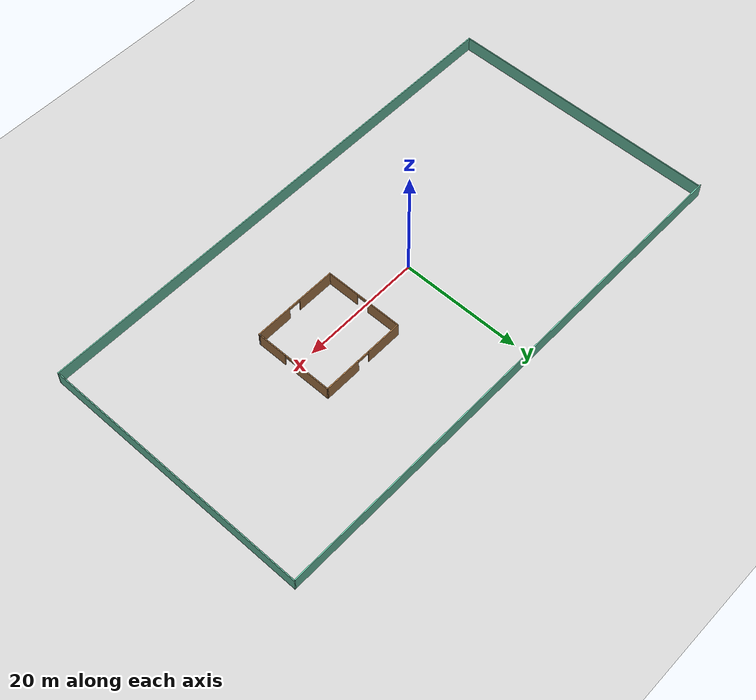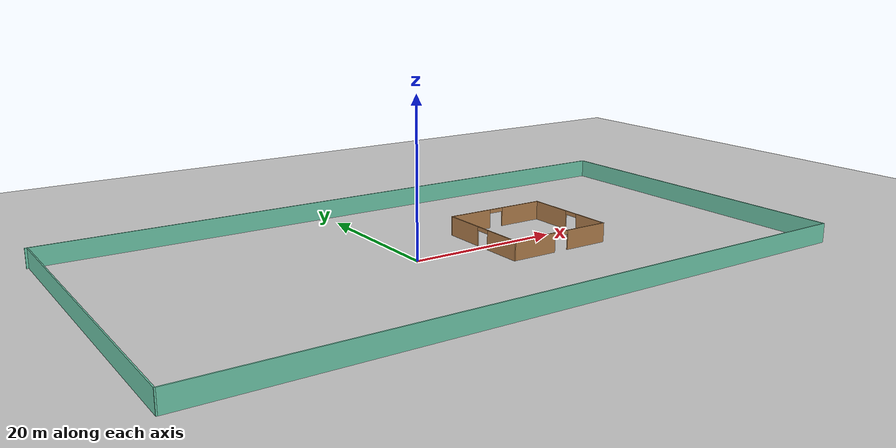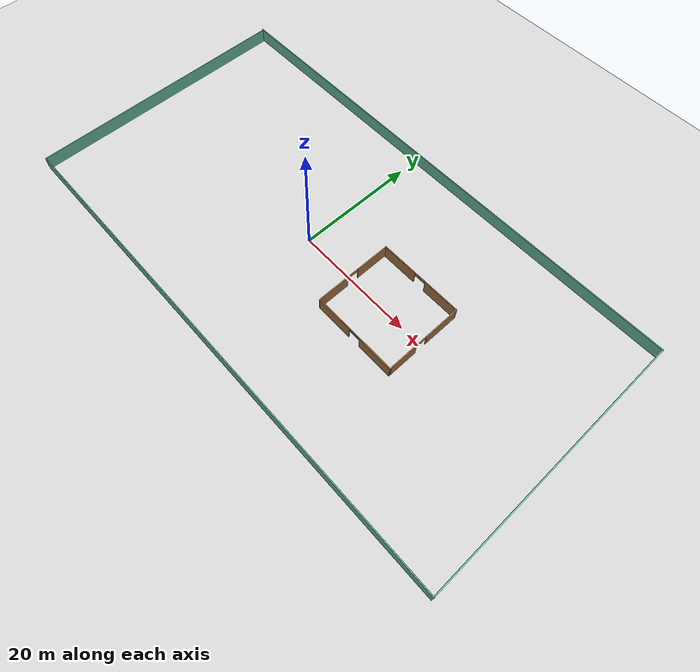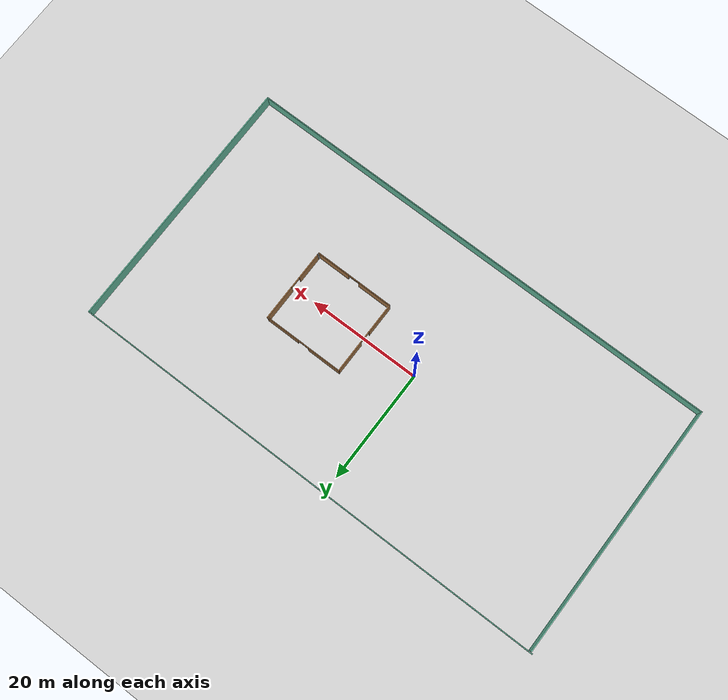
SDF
<sdf version="1.7">
 <world name="default">
  <light name="sun" type="directional">
   <pose>0 0 10 0 -0 0</pose>
   <diffuse>0.8 0.8 0.8 1</diffuse>
   <specular>0.2 0.2 0.2 1</specular>
   <attenuation>
    <range>1000</range>
    <constant>0.9</constant>
    <linear>0.01</linear>
    <quadratic>0.001</quadratic>
   </attenuation>
   <direction>-0.5 0.1 -0.9</direction>
   <spot><inner_angle>0</inner_angle><outer_angle>0</outer_angle><falloff>0</falloff></spot>
  </light>
  <model name="ground_plane">
   <static>1</static>
   <link name="link">
    <collision name="collision">
     <geometry><plane><normal>0 0 1</normal><size>100 100</size></plane></geometry>
     <surface><friction><ode><mu>100</mu><mu2>50</mu2></ode></friction></surface>
    </collision>
    <visual name="visual">
     <cast_shadows>0</cast_shadows>
     <geometry><plane><normal>0 0 1</normal><size>100 100</size></plane></geometry>
     <material>
      <script><uri>file://media/materials/scripts/gazebo.material</uri><name>Gazebo/Grey</name></script>
     </material>
    </visual>
   </link>
  </model>
  <gravity>0 0 -9.8</gravity>
  <magnetic_field>6e-06 2.3e-05 -4.2e-05</magnetic_field>
  <atmosphere type="adiabatic"/>
  <physics type="ode">
   <max_step_size>0.001</max_step_size>
   <real_time_factor>1</real_time_factor>
   <real_time_update_rate>1000</real_time_update_rate>
  </physics>
  <scene><ambient>0.4 0.4 0.4 1</ambient><background>0.7 0.7 0.7 1</background><shadows>1</shadows></scene>
  <spherical_coordinates>
   <surface_model>EARTH_WGS84</surface_model>
   <latitude_deg>0</latitude_deg>
   <longitude_deg>0</longitude_deg>
   <elevation>0</elevation>
   <heading_deg>0</heading_deg>
  </spherical_coordinates>
  <model name="outside_1">
   <pose>3.75861 8.4888 0 0 -0 0</pose>
   <link name="Wall_22">
    <collision name="Wall_22_Collision">
     <geometry><box><size>86 0.15 2.5</size></box></geometry>
     <pose>0 0 1.25 0 -0 0</pose>
    </collision>
    <visual name="Wall_22_Visual">
     <pose>0 0 1.25 0 -0 0</pose>
     <geometry><box><size>86 0.15 2.5</size></box></geometry>
     <material>
      <script><uri>file://media/materials/scripts/gazebo.material</uri><name>Gazebo/Grey</name></script>
      <ambient>0.435294 0.796078 0.67451 1</ambient>
     </material>
     <meta><layer>0</layer></meta>
    </visual>
    <pose>-3e-06 14.5309 0 0 -0 0</pose>
   </link>
   <link name="Wall_23">
    <collision name="Wall_23_Collision">
     <geometry><box><size>45.25 0.15 2.5</size></box></geometry>
     <pose>0 0 1.25 0 -0 0</pose>
    </collision>
    <visual name="Wall_23_Visual">
     <pose>0 0 1.25 0 -0 0</pose>
     <geometry><box><size>45.25 0.15 2.5</size></box></geometry>
     <material>
      <script><uri>file://media/materials/scripts/gazebo.material</uri><name>Gazebo/Grey</name></script>
      <ambient>0.435294 0.796078 0.67451 1</ambient>
     </material>
     <meta><layer>0</layer></meta>
    </visual>
    <pose>42.925 -8.01907 0 0 -0 -1.5708</pose>
   </link>
   <link name="Wall_24">
    <collision name="Wall_24_Collision">
     <geometry><box><size>85.75 0.15 2.5</size></box></geometry>
     <pose>0 0 1.25 0 -0 0</pose>
    </collision>
    <visual name="Wall_24_Visual">
     <pose>0 0 1.25 0 -0 0</pose>
     <geometry><box><size>85.75 0.15 2.5</size></box></geometry>
     <material>
      <script><uri>file://media/materials/scripts/gazebo.material</uri><name>Gazebo/Grey</name></script>
      <ambient>0.435294 0.796078 0.67451 1</ambient>
     </material>
     <meta><layer>0</layer></meta>
    </visual>
    <pose>0.124997 -30.5691 0 0 -0 3.14159</pose>
   </link>
   <link name="Wall_25">
    <collision name="Wall_25_Collision">
     <geometry><box><size>45 0.15 2.5</size></box></geometry>
     <pose>0 0 1.25 0 -0 0</pose>
    </collision>
    <visual name="Wall_25_Visual">
     <pose>0 0 1.25 0 -0 0</pose>
     <geometry><box><size>45 0.15 2.5</size></box></geometry>
     <material>
      <script><uri>file://media/materials/scripts/gazebo.material</uri><name>Gazebo/Grey</name></script>
      <ambient>0.435294 0.796078 0.67451 1</ambient>
     </material>
     <meta><layer>0</layer></meta>
    </visual>
    <pose>-42.675 -8.14407 0 0 -0 1.5708</pose>
   </link>
   <static>1</static>
  </model>
  <model name="indoors_0">
   <pose>16.721 0.168876 0 0 -0 0</pose>
   <link name="Wall_51">
    <pose>7.05 0.125 0 0 -0 1.5708</pose>
    <visual name="Wall_51_Visual_0">
     <pose>-4.06259 0 1.25 0 -0 0</pose>
     <geometry><box><size>4.87482 0.15 2.5</size></box></geometry>
     <material>
      <script><uri>file://media/materials/scripts/gazebo.material</uri><name>Gazebo/Wood</name></script>
      <ambient>1 1 1 1</ambient>
     </material>
     <meta><layer>0</layer></meta>
    </visual>
    <collision name="Wall_51_Collision_0">
     <geometry><box><size>4.87482 0.15 2.5</size></box></geometry>
     <pose>-4.06259 0 1.25 0 -0 0</pose>
    </collision>
    <visual name="Wall_51_Visual_1">
     <pose>3.43741 0 1.25 0 -0 0</pose>
     <geometry><box><size>6.12518 0.15 2.5</size></box></geometry>
     <material>
      <script><uri>file://media/materials/scripts/gazebo.material</uri><name>Gazebo/Wood</name></script>
      <ambient>1 1 1 1</ambient>
     </material>
     <meta><layer>0</layer></meta>
    </visual>
    <collision name="Wall_51_Collision_1">
     <geometry><box><size>6.12518 0.15 2.5</size></box></geometry>
     <pose>3.43741 0 1.25 0 -0 0</pose>
    </collision>
    <visual name="Wall_51_Visual_2">
     <pose>-0.625179 0 2.25 0 -0 0</pose>
     <geometry><box><size>2 0.15 0.5</size></box></geometry>
     <material>
      <script><uri>file://media/materials/scripts/gazebo.material</uri><name>Gazebo/Wood</name></script>
      <ambient>1 1 1 1</ambient>
     </material>
     <meta><layer>0</layer></meta>
    </visual>
    <collision name="Wall_51_Collision_2">
     <geometry><box><size>2 0.15 0.5</size></box></geometry>
     <pose>-0.625179 0 2.25 0 -0 0</pose>
    </collision>
   </link>
   <link name="Wall_55">
    <pose>0 6.55 0 0 -0 3.14159</pose>
    <visual name="Wall_55_Visual_0">
     <pose>-4.05773 0 1.25 0 -0 0</pose>
     <geometry><box><size>6.13453 0.15 2.5</size></box></geometry>
     <material>
      <script><uri>file://media/materials/scripts/gazebo.material</uri><name>Gazebo/Wood</name></script>
      <ambient>1 1 1 1</ambient>
     </material>
     <meta><layer>0</layer></meta>
    </visual>
    <collision name="Wall_55_Collision_0">
     <geometry><box><size>6.13453 0.15 2.5</size></box></geometry>
     <pose>-4.05773 0 1.25 0 -0 0</pose>
    </collision>
    <visual name="Wall_55_Visual_1">
     <pose>4.06727 0 1.25 0 -0 0</pose>
     <geometry><box><size>6.11547 0.15 2.5</size></box></geometry>
     <material>
      <script><uri>file://media/materials/scripts/gazebo.material</uri><name>Gazebo/Wood</name></script>
      <ambient>1 1 1 1</ambient>
     </material>
     <meta><layer>0</layer></meta>
    </visual>
    <collision name="Wall_55_Collision_1">
     <geometry><box><size>6.11547 0.15 2.5</size></box></geometry>
     <pose>4.06727 0 1.25 0 -0 0</pose>
    </collision>
    <visual name="Wall_55_Visual_2">
     <pose>0.009531 0 2.25 0 -0 0</pose>
     <geometry><box><size>2 0.15 0.5</size></box></geometry>
     <material>
      <script><uri>file://media/materials/scripts/gazebo.material</uri><name>Gazebo/Wood</name></script>
      <ambient>1 1 1 1</ambient>
     </material>
     <meta><layer>0</layer></meta>
    </visual>
    <collision name="Wall_55_Collision_2">
     <geometry><box><size>2 0.15 0.5</size></box></geometry>
     <pose>0.009531 0 2.25 0 -0 0</pose>
    </collision>
   </link>
   <link name="Wall_56">
    <pose>-7.05 -0 0 0 -0 -1.5708</pose>
    <visual name="Wall_56_Visual_0">
     <pose>-3.7383 0 1.25 0 -0 0</pose>
     <geometry><box><size>5.77339 0.15 2.5</size></box></geometry>
     <material>
      <script><uri>file://media/materials/scripts/gazebo.material</uri><name>Gazebo/Wood</name></script>
      <ambient>1 1 1 1</ambient>
     </material>
     <meta><layer>0</layer></meta>
    </visual>
    <collision name="Wall_56_Collision_0">
     <geometry><box><size>5.77339 0.15 2.5</size></box></geometry>
     <pose>-3.7383 0 1.25 0 -0 0</pose>
    </collision>
    <visual name="Wall_56_Visual_1">
     <pose>3.8867 0 1.25 0 -0 0</pose>
     <geometry><box><size>5.47661 0.15 2.5</size></box></geometry>
     <material>
      <script><uri>file://media/materials/scripts/gazebo.material</uri><name>Gazebo/Wood</name></script>
      <ambient>1 1 1 1</ambient>
     </material>
     <meta><layer>0</layer></meta>
    </visual>
    <collision name="Wall_56_Collision_1">
     <geometry><box><size>5.47661 0.15 2.5</size></box></geometry>
     <pose>3.8867 0 1.25 0 -0 0</pose>
    </collision>
    <visual name="Wall_56_Visual_2">
     <pose>0.148391 0 2.25 0 -0 0</pose>
     <geometry><box><size>2 0.15 0.5</size></box></geometry>
     <material>
      <script><uri>file://media/materials/scripts/gazebo.material</uri><name>Gazebo/Wood</name></script>
      <ambient>1 1 1 1</ambient>
     </material>
     <meta><layer>0</layer></meta>
    </visual>
    <collision name="Wall_56_Collision_2">
     <geometry><box><size>2 0.15 0.5</size></box></geometry>
     <pose>0.148391 0 2.25 0 -0 0</pose>
    </collision>
   </link>
   <link name="Wall_57">
    <pose>0 -6.55 0 0 -0 0</pose>
    <visual name="Wall_57_Visual_0">
     <pose>-3.99691 0 1.25 0 -0 0</pose>
     <geometry><box><size>6.25618 0.15 2.5</size></box></geometry>
     <material>
      <script><uri>file://media/materials/scripts/gazebo.material</uri><name>Gazebo/Wood</name></script>
      <ambient>1 1 1 1</ambient>
     </material>
     <meta><layer>0</layer></meta>
    </visual>
    <collision name="Wall_57_Collision_0">
     <geometry><box><size>6.25618 0.15 2.5</size></box></geometry>
     <pose>-3.99691 0 1.25 0 -0 0</pose>
    </collision>
    <visual name="Wall_57_Visual_1">
     <pose>4.12809 0 1.25 0 -0 0</pose>
     <geometry><box><size>5.99382 0.15 2.5</size></box></geometry>
     <material>
      <script><uri>file://media/materials/scripts/gazebo.material</uri><name>Gazebo/Wood</name></script>
      <ambient>1 1 1 1</ambient>
     </material>
     <meta><layer>0</layer></meta>
    </visual>
    <collision name="Wall_57_Collision_1">
     <geometry><box><size>5.99382 0.15 2.5</size></box></geometry>
     <pose>4.12809 0 1.25 0 -0 0</pose>
    </collision>
    <visual name="Wall_57_Visual_2">
     <pose>0.131184 0 2.25 0 -0 0</pose>
     <geometry><box><size>2 0.15 0.5</size></box></geometry>
     <material>
      <script><uri>file://media/materials/scripts/gazebo.material</uri><name>Gazebo/Wood</name></script>
      <ambient>1 1 1 1</ambient>
     </material>
     <meta><layer>0</layer></meta>
    </visual>
    <collision name="Wall_57_Collision_2">
     <geometry><box><size>2 0.15 0.5</size></box></geometry>
     <pose>0.131184 0 2.25 0 -0 0</pose>
    </collision>
   </link>
   <link name="Wall_58">
    <collision name="Wall_58_Collision">
     <geometry><box><size>0.5 0.15 2.5</size></box></geometry>
     <pose>0 0 1.25 0 -0 0</pose>
    </collision>
    <visual name="Wall_58_Visual">
     <pose>0 0 1.25 0 -0 0</pose>
     <geometry><box><size>0.5 0.15 2.5</size></box></geometry>
     <material>
      <script><uri>file://media/materials/scripts/gazebo.material</uri><name>Gazebo/Grey</name></script>
      <ambient>1 1 1 1</ambient>
     </material>
     <meta><layer>0</layer></meta>
    </visual>
    <pose>7.05 -6.375 0 0 -0 1.5708</pose>
   </link>
   <static>1</static>
  </model>
 </world>
</sdf>
